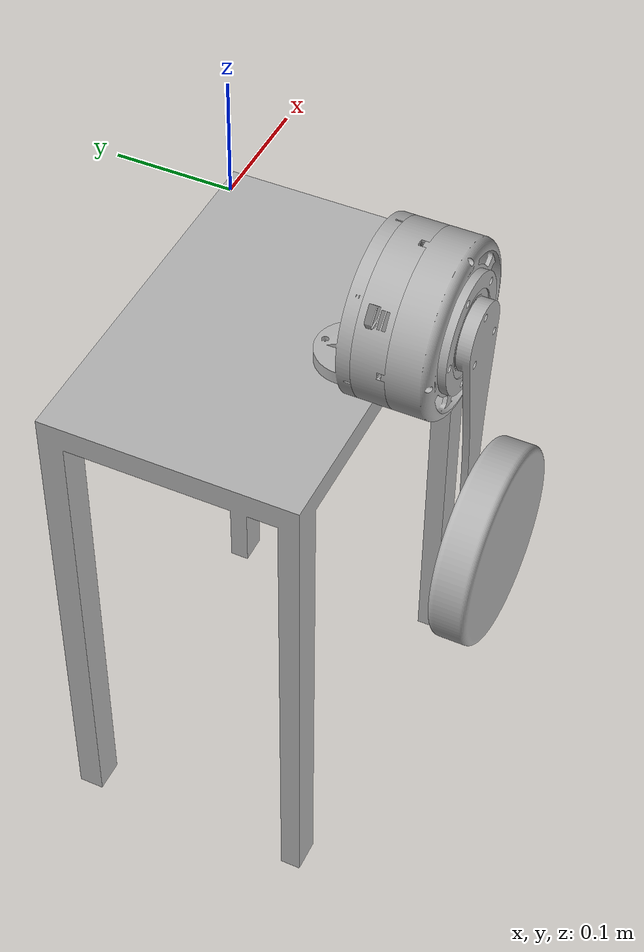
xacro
<?xml version="1.0" ?>
<robot name="Fusion2URDF" xmlns:xacro="http://www.ros.org/wiki/xacro">

<xacro:include filename="$(find bj_actuator_rviz)/urdf/materials.xacro" />
<link name="base_link">
  <inertial>
    <origin xyz="-0.0028330346955828395 0.0016884966323609874 -0.06621212930095734" rpy="0 0 0"/>
    <mass value="14.785990178874746"/>
    <inertia ixx="0.29892" iyy="0.394886" izz="0.24856" ixy="0.003362" iyz="0.003339" ixz="-0.005604"/>
  </inertial>
  <visual>
    <origin xyz="0 0 0" rpy="0 0 0"/>
    <geometry>
      <mesh filename="file://$(find bj_actuator_rviz)/meshes/base_link.stl" scale="0.001 0.001 0.001"/>
    </geometry>
    <material name="silver"/>
  </visual>
  <collision>
    <origin xyz="0 0 0" rpy="0 0 0"/>
    <geometry>
      <mesh filename="file://$(find bj_actuator_rviz)/meshes/base_link.stl" scale="0.001 0.001 0.001"/>
    </geometry>
  </collision>
</link>

<link name="motor_mount_1">
  <inertial>
    <origin xyz="-0.019812406494891858 -0.04982856799628446 0.060409745966615275" rpy="0 0 0"/>
    <mass value="1.1722540905080954"/>
    <inertia ixx="0.002714" iyy="0.003585" izz="0.001392" ixy="-0.000166" iyz="0.00045" ixz="0.000773"/>
  </inertial>
  <visual>
    <origin xyz="-0.0 0.048 -0.02" rpy="0 0 0"/>
    <geometry>
      <mesh filename="file://$(find bj_actuator_rviz)/meshes/motor_mount_1.stl" scale="0.001 0.001 0.001"/>
    </geometry>
    <material name="silver"/>
  </visual>
  <collision>
    <origin xyz="-0.0 0.048 -0.02" rpy="0 0 0"/>
    <geometry>
      <mesh filename="file://$(find bj_actuator_rviz)/meshes/motor_mount_1.stl" scale="0.001 0.001 0.001"/>
    </geometry>
  </collision>
</link>

<link name="front_case_1">
  <inertial>
    <origin xyz="0.0002942746675850122 -0.023330875253813 -0.0005510528081631438" rpy="0 0 0"/>
    <mass value="0.4273308542503233"/>
    <inertia ixx="0.000607" iyy="0.001141" izz="0.000598" ixy="-1e-06" iyz="3e-06" ixz="6e-06"/>
  </inertial>
  <visual>
    <origin xyz="0.034875 0.13427 -0.11255" rpy="0 0 0"/>
    <geometry>
      <mesh filename="file://$(find bj_actuator_rviz)/meshes/front_case_1.stl" scale="0.001 0.001 0.001"/>
    </geometry>
    <material name="silver"/>
  </visual>
  <collision>
    <origin xyz="0.034875 0.13427 -0.11255" rpy="0 0 0"/>
    <geometry>
      <mesh filename="file://$(find bj_actuator_rviz)/meshes/front_case_1.stl" scale="0.001 0.001 0.001"/>
    </geometry>
  </collision>
</link>

<link name="rear_case_241023_1">
  <inertial>
    <origin xyz="-0.001859711636107951 -0.008197454219922587 -0.0010899592942909264" rpy="0 0 0"/>
    <mass value="0.21930558501864583"/>
    <inertia ixx="0.000346" iyy="0.000681" izz="0.000363" ixy="1e-06" iyz="3e-06" ixz="1.2e-05"/>
  </inertial>
  <visual>
    <origin xyz="0.034875 0.11 -0.11255" rpy="0 0 0"/>
    <geometry>
      <mesh filename="file://$(find bj_actuator_rviz)/meshes/rear_case_241023_1.stl" scale="0.001 0.001 0.001"/>
    </geometry>
    <material name="silver"/>
  </visual>
  <collision>
    <origin xyz="0.034875 0.11 -0.11255" rpy="0 0 0"/>
    <geometry>
      <mesh filename="file://$(find bj_actuator_rviz)/meshes/rear_case_241023_1.stl" scale="0.001 0.001 0.001"/>
    </geometry>
  </collision>
</link>

<link name="mass_plate_1">
  <inertial>
    <origin xyz="1.49011789019049e-10 -0.014999999999999486 1.6653345369377348e-16" rpy="0 0 0"/>
    <mass value="13.129065500806407"/>
    <inertia ixx="0.019268" iyy="0.036596" izz="0.019268" ixy="0.0" iyz="0.0" ixz="-0.0"/>
  </inertial>
  <visual>
    <origin xyz="0.034875 0.17717 0.07745" rpy="0 0 0"/>
    <geometry>
      <mesh filename="file://$(find bj_actuator_rviz)/meshes/mass_plate_1.stl" scale="0.001 0.001 0.001"/>
    </geometry>
    <material name="silver"/>
  </visual>
  <collision>
    <origin xyz="0.034875 0.17717 0.07745" rpy="0 0 0"/>
    <geometry>
      <mesh filename="file://$(find bj_actuator_rviz)/meshes/mass_plate_1.stl" scale="0.001 0.001 0.001"/>
    </geometry>
  </collision>
</link>

<link name="bearing_1">
  <inertial>
    <origin xyz="3.469446951953614e-16 0.003200000000000147 2.0816681711721685e-16" rpy="0 0 0"/>
    <mass value="0.008940871381981142"/>
    <inertia ixx="4e-06" iyy="8e-06" izz="4e-06" ixy="0.0" iyz="-0.0" ixz="0.0"/>
  </inertial>
  <visual>
    <origin xyz="0.034875 0.16687 -0.11255" rpy="0 0 0"/>
    <geometry>
      <mesh filename="file://$(find bj_actuator_rviz)/meshes/bearing_1.stl" scale="0.001 0.001 0.001"/>
    </geometry>
    <material name="silver"/>
  </visual>
  <collision>
    <origin xyz="0.034875 0.16687 -0.11255" rpy="0 0 0"/>
    <geometry>
      <mesh filename="file://$(find bj_actuator_rviz)/meshes/bearing_1.stl" scale="0.001 0.001 0.001"/>
    </geometry>
  </collision>
</link>

<link name="test_bar_1">
  <inertial>
    <origin xyz="5.5887093564077617e-11 -0.0063308148042292844 -0.050698056951401435" rpy="0 0 0"/>
    <mass value="0.33133706662052054"/>
    <inertia ixx="0.001228" iyy="0.001264" izz="4.1e-05" ixy="0.0" iyz="-2e-05" ixz="0.0"/>
  </inertial>
  <visual>
    <origin xyz="0.034875 0.16717 -0.11255" rpy="0 0 0"/>
    <geometry>
      <mesh filename="file://$(find bj_actuator_rviz)/meshes/test_bar_1.stl" scale="0.001 0.001 0.001"/>
    </geometry>
    <material name="silver"/>
  </visual>
  <collision>
    <origin xyz="0.034875 0.16717 -0.11255" rpy="0 0 0"/>
    <geometry>
      <mesh filename="file://$(find bj_actuator_rviz)/meshes/test_bar_1.stl" scale="0.001 0.001 0.001"/>
    </geometry>
  </collision>
</link>

<joint name="base_joint" type="fixed">
  <origin xyz="0.0 -0.048 0.02" rpy="0 0 0"/>
  <parent link="base_link"/>
  <child link="motor_mount_1"/>
</joint>

<joint name="case_joint" type="fixed">
  <origin xyz="0.0 -0.02427 0.0" rpy="0 0 0"/>
  <parent link="rear_case_241023_1"/>
  <child link="front_case_1"/>
</joint>

<joint name="mount_joint" type="fixed">
  <origin xyz="-0.034875 -0.062 0.09255" rpy="0 0 0"/>
  <parent link="motor_mount_1"/>
  <child link="rear_case_241023_1"/>
</joint>

<joint name="mass_joint" type="fixed">
  <origin xyz="0.0 -0.01 -0.19" rpy="0 0 0"/>
  <parent link="test_bar_1"/>
  <child link="mass_plate_1"/>
</joint>

<joint name="gear_joint" type="fixed">
  <origin xyz="0.0 -0.0326 0.0" rpy="0 0 0"/>
  <parent link="front_case_1"/>
  <child link="bearing_1"/>
</joint>

<joint name="continuous_joint" type="fixed">
  <origin xyz="0.0 -0.0003 0.0" rpy="0 0 0"/>
  <parent link="bearing_1"/>
  <child link="test_bar_1"/>
</joint>

</robot>

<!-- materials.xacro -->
<robot name="Fusion2URDF" xmlns:xacro="http://www.ros.org/wiki/xacro" >

<material name="silver">
  <color rgba="0.700 0.700 0.700 1.000"/>
</material>

</robot>
